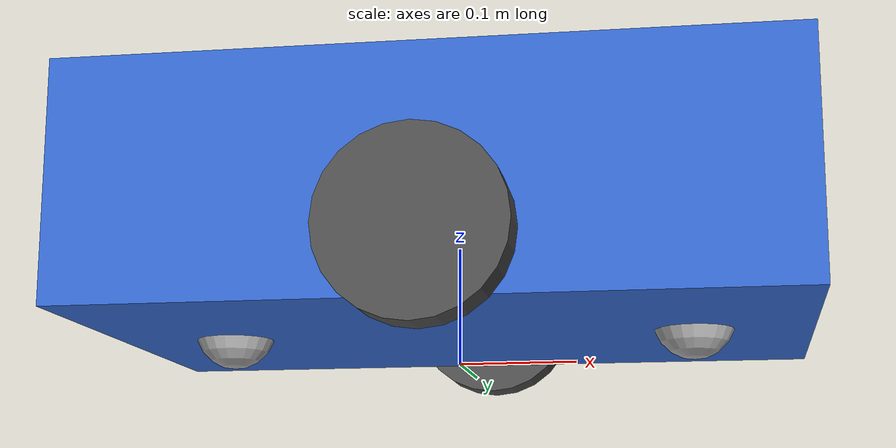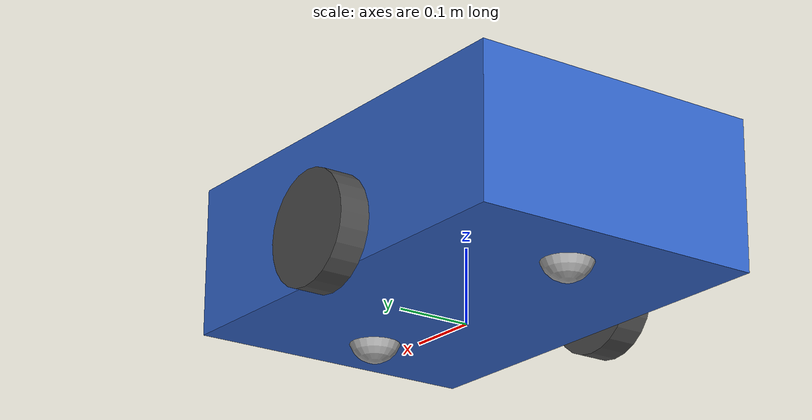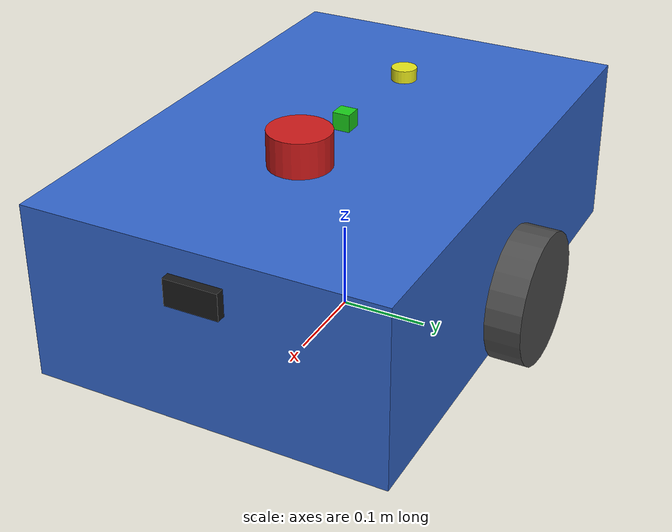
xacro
<?xml version="1.0"?>
<!--
  scout.urdf.xacro — Главный файл модели робота Scout Mini
  Подключает все компоненты: шасси, колёса, сенсоры, плагины Gazebo.
-->
<robot xmlns:xacro="http://www.ros.org/wiki/xacro" name="scout_mini">

  <!-- ПАРАМЕТРЫ РОБОТА                                              -->

  <!-- Шасси -->
  <xacro:property name="chassis_length" value="0.6"/>     <!-- Длина корпуса, м -->
  <xacro:property name="chassis_width" value="0.4"/>      <!-- Ширина корпуса, м -->
  <xacro:property name="chassis_height" value="0.2"/>     <!-- Высота корпуса, м -->
  <xacro:property name="chassis_mass" value="12.0"/>      <!-- Масса корпуса, кг -->
  <xacro:property name="chassis_z_offset" value="0.125"/> <!-- Высота центра корпуса над землёй, м -->

  <!-- Колёса (2 ведущих на центральной оси) -->
  <xacro:property name="wheel_radius" value="0.075"/>     <!-- Радиус колеса, м -->
  <xacro:property name="wheel_width" value="0.04"/>       <!-- Ширина колеса, м -->
  <xacro:property name="wheel_mass" value="0.5"/>         <!-- Масса одного колеса, кг -->
  <xacro:property name="wheel_separation" value="0.44"/>  <!-- Колея: между центрами колёс, м -->

  <!-- Сферические опорные катки (трение ~0) -->
  <xacro:property name="caster_radius" value="0.035"/>    <!-- Радиус сферы-катка, м -->
  <xacro:property name="caster_x_offset" value="0.2"/>    <!-- Вынос катков вперёд/назад, м -->
  <xacro:property name="caster_mass" value="0.1"/>        <!-- Масса катка, кг -->

  <!-- Шасси и колёса -->
  <xacro:include filename="$(find scout_description)/urdf/base.xacro"/>

  <!-- Сенсоры (ВСЕ ВКЛЮЧЕНЫ) -->
  <xacro:include filename="$(find scout_description)/urdf/sensors/lidar.xacro"/>
  <xacro:include filename="$(find scout_description)/urdf/sensors/depth_camera.xacro"/>
  <xacro:include filename="$(find scout_description)/urdf/sensors/imu.xacro"/>
  <xacro:include filename="$(find scout_description)/urdf/sensors/gps.xacro"/>

  <!-- Плагины Gazebo -->
  <xacro:include filename="$(find scout_description)/urdf/gazebo/gz_plugins.xacro"/>

</robot>

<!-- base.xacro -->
<robot xmlns:xacro="http://www.ros.org/wiki/xacro">

  <!-- МАКРОС: ведущее колесо                                        -->
  <xacro:macro name="drive_wheel" params="prefix y_offset">
    <joint name="${prefix}_wheel_joint" type="continuous">
      <parent link="base_link"/>
      <child link="${prefix}_wheel"/>
      <!-- центр колеса на высоте wheel_radius над землёй -->
      <origin xyz="0 ${y_offset} ${wheel_radius - chassis_z_offset}" rpy="0 0 0"/>
      <axis xyz="0 1 0"/>
      <dynamics damping="0.1" friction="0.1"/>
    </joint>

    <link name="${prefix}_wheel">
      <visual>
        <origin xyz="0 0 0" rpy="${pi/2} 0 0"/>
        <geometry>
          <cylinder radius="${wheel_radius}" length="${wheel_width}"/>
        </geometry>
        <material name="dark_grey">
          <color rgba="0.3 0.3 0.3 1.0"/>
        </material>
      </visual>

      <collision>
        <origin xyz="0 0 0" rpy="${pi/2} 0 0"/>
        <geometry>
          <cylinder radius="${wheel_radius}" length="${wheel_width}"/>
        </geometry>
      </collision>

      <inertial>
        <mass value="${wheel_mass}"/>
        <origin xyz="0 0 0" rpy="${pi/2} 0 0"/>
        <inertia
          ixx="${wheel_mass * (3 * wheel_radius * wheel_radius + wheel_width * wheel_width) / 12}"
          ixy="0" ixz="0"
          iyy="${wheel_mass * (3 * wheel_radius * wheel_radius + wheel_width * wheel_width) / 12}"
          iyz="0"
          izz="${wheel_mass * wheel_radius * wheel_radius / 2}"/>
      </inertial>
    </link>

    <gazebo reference="${prefix}_wheel">
      <mu1>1.0</mu1>
      <mu2>1.0</mu2>
      <kp>1000000.0</kp>
      <kd>100.0</kd>
      <material>Gazebo/DarkGrey</material>
    </gazebo>
  </xacro:macro>

  <!-- МАКРОС: сферический опорный каток (трение ~0)                 -->
  <xacro:macro name="caster_ball" params="prefix x_offset">
    <link name="${prefix}_caster">
      <visual>
        <geometry>
          <sphere radius="${caster_radius}"/>
        </geometry>
        <material name="light_grey">
          <color rgba="0.7 0.7 0.7 1.0"/>
        </material>
      </visual>

      <collision>
        <geometry>
          <sphere radius="${caster_radius}"/>
        </geometry>
      </collision>

      <inertial>
        <mass value="${caster_mass}"/>
        <inertia
          ixx="${2 * caster_mass * caster_radius * caster_radius / 5}"
          ixy="0" ixz="0"
          iyy="${2 * caster_mass * caster_radius * caster_radius / 5}"
          iyz="0"
          izz="${2 * caster_mass * caster_radius * caster_radius / 5}"/>
      </inertial>
    </link>

    <!-- fixed-сустав: сфера не вращается — она СКОЛЬЗИТ с нулевым
         трением, работая как омнисферический каток -->
    <joint name="${prefix}_caster_joint" type="fixed">
      <parent link="base_link"/>
      <child link="${prefix}_caster"/>
      <origin xyz="${x_offset} 0 ${caster_radius - chassis_z_offset}" rpy="0 0 0"/>
    </joint>

    <gazebo reference="${prefix}_caster">
      <mu1>0.0</mu1>
      <mu2>0.0</mu2>
      <kp>1000000.0</kp>
      <kd>100.0</kd>
      <material>Gazebo/Grey</material>
    </gazebo>
  </xacro:macro>

  <!-- BASE_FOOTPRINT — проекция робота на землю                     -->
  <link name="base_footprint"/>

  <joint name="base_joint" type="fixed">
    <parent link="base_footprint"/>
    <child link="base_link"/>
    <origin xyz="0 0 ${chassis_z_offset}" rpy="0 0 0"/>
  </joint>

  <!-- BASE_LINK — корпус                                            -->
  <link name="base_link">
    <visual>
      <geometry>
        <box size="${chassis_length} ${chassis_width} ${chassis_height}"/>
      </geometry>
      <material name="blue">
        <color rgba="0.2 0.4 0.8 1.0"/>
      </material>
    </visual>

    <collision>
      <geometry>
        <box size="${chassis_length} ${chassis_width} ${chassis_height}"/>
      </geometry>
    </collision>

    <inertial>
      <mass value="${chassis_mass}"/>
      <inertia
        ixx="${chassis_mass * (chassis_height * chassis_height + chassis_width * chassis_width) / 12}"
        ixy="0" ixz="0"
        iyy="${chassis_mass * (chassis_length * chassis_length + chassis_height * chassis_height) / 12}"
        iyz="0"
        izz="${chassis_mass * (chassis_length * chassis_length + chassis_width * chassis_width) / 12}"/>
    </inertial>
  </link>

  <gazebo reference="base_link">
    <material>Gazebo/Blue</material>
  </gazebo>

  <!-- СБОРКА: 2 ведущих колеса на центральной оси + 2 катка         -->
  <xacro:drive_wheel prefix="left"  y_offset="${wheel_separation / 2}"/>
  <xacro:drive_wheel prefix="right" y_offset="${-wheel_separation / 2}"/>

  <xacro:caster_ball prefix="front" x_offset="${caster_x_offset}"/>
  <xacro:caster_ball prefix="rear"  x_offset="${-caster_x_offset}"/>

</robot>

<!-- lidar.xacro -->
<!--
  lidar.xacro — 2D LiDAR (аналог RPLiDAR A2 / Hokuyo UST-10LX)

  Расположение: верхняя часть корпуса, по центру.
  Сканирует на 360° в горизонтальной плоскости.
-->
<robot xmlns:xacro="http://www.ros.org/wiki/xacro">

  <!-- Параметры LiDAR -->
  <xacro:property name="lidar_radius" value="0.035"/>   <!-- Радиус корпуса LiDAR, м -->
  <xacro:property name="lidar_height" value="0.04"/>    <!-- Высота корпуса LiDAR, м -->
  <xacro:property name="lidar_mass" value="0.2"/>       <!-- Масса LiDAR, кг -->
  <xacro:property name="lidar_z_offset" value="0.02"/>  <!-- Смещение вверх от крыши = половина высоты корпуса LiDAR (стоит заподлицо, плоскость скана в центре цилиндра) -->

  <!-- СОЧЛЕНЕНИЕ: крепление LiDAR к корпусу                         -->
  <joint name="lidar_joint" type="fixed">
    <parent link="base_link"/>
    <child link="lidar_link"/>
    <!-- LiDAR на крыше корпуса, по центру, чуть впереди -->
    <origin xyz="0.1 0 ${chassis_height / 2 + lidar_z_offset}" rpy="0 0 0"/>
  </joint>

  <!-- ЗВЕНО: корпус LiDAR                                           -->
  <link name="lidar_link">
    <visual>
      <geometry>
        <!-- LiDAR — маленький цилиндр на крыше -->
        <cylinder radius="${lidar_radius}" length="${lidar_height}"/>
      </geometry>
      <material name="red">
        <color rgba="0.8 0.1 0.1 1.0"/>
      </material>
    </visual>

    <collision>
      <geometry>
        <cylinder radius="${lidar_radius}" length="${lidar_height}"/>
      </geometry>
    </collision>

    <inertial>
      <mass value="${lidar_mass}"/>
      <inertia
        ixx="${lidar_mass * (3 * lidar_radius * lidar_radius + lidar_height * lidar_height) / 12}"
        ixy="0" ixz="0"
        iyy="${lidar_mass * (3 * lidar_radius * lidar_radius + lidar_height * lidar_height) / 12}"
        iyz="0"
        izz="${lidar_mass * lidar_radius * lidar_radius / 2}"/>
    </inertial>
  </link>

  <!-- ПЛАГИН GAZEBO: GPU LiDAR                                      -->
  <!-- Использует GPU для быстрого ray-casting (трассировки лучей).  -->
  <!-- Рендерится движком Sensors-системы мира (ogre2, см. obstacle_course.sdf) -->
  <gazebo reference="lidar_link">
    <sensor name="gpu_lidar" type="gpu_lidar">
      <!-- Частота сканирования -->
      <update_rate>10</update_rate>

      <!-- Визуализация лучей в Gazebo (можно отключить для скорости) -->
      <visualize>true</visualize>

      <!-- Frame_id сообщений LiDAR без префикса имени модели (Harmonic) -->
      <gz_frame_id>lidar_link</gz_frame_id>

      <!-- Тема GZ Transport (маппится на /scan в ROS 2) -->
      <topic>scan</topic>

      <!-- Параметры сканирования -->
      <lidar>
        <scan>
          <horizontal>
            <samples>720</samples>
            <!-- 720 лучей = 0.5° разрешение на 360° -->
            <resolution>1</resolution>
            <min_angle>-3.14159265</min_angle>
            <max_angle>3.14159265</max_angle>
            <!-- +π = +180° (итого 360°) -->
          </horizontal>
        </scan>

        <range>
          <min>0.12</min>
          <!-- Минимальная дальность 12 см (ближе — слепая зона) -->
          <max>12.0</max>
          <!-- Максимальная дальность 12 м -->
          <resolution>0.01</resolution>
          <!-- Точность измерения 1 см -->
        </range>

        <!-- Шум измерения (моделирует реальный LiDAR) -->
        <noise>
          <type>gaussian</type>
          <mean>0.0</mean>
          <stddev>0.01</stddev>
          <!-- Стандартное отклонение 1 см -->
        </noise>
      </lidar>
    </sensor>

    <!-- Цвет LiDAR в Gazebo -->
    <material>Gazebo/Red</material>
  </gazebo>

</robot>

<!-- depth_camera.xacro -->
<robot xmlns:xacro="http://www.ros.org/wiki/xacro">

  <!-- Параметры камеры -->
  <xacro:property name="camera_width" value="0.06"/>    <!-- Ширина камеры, м -->
  <xacro:property name="camera_height" value="0.03"/>   <!-- Высота камеры, м -->
  <xacro:property name="camera_depth" value="0.02"/>    <!-- Глубина камеры, м -->
  <xacro:property name="camera_mass" value="0.15"/>     <!-- Масса камеры, кг -->

  <!-- СОЧЛЕНЕНИЕ: крепление камеры к корпусу                        -->
  <joint name="camera_joint" type="fixed">
    <parent link="base_link"/>
    <child link="camera_link"/>
    <!-- Камера на передней панели, по центру, на высоте 18 см от земли -->
    <origin xyz="${chassis_length / 2} 0 0.055" rpy="0 0 0"/>
  </joint>

  <!-- ЗВЕНО: корпус камеры                                          -->
  <link name="camera_link">
    <visual>
      <geometry>
        <box size="${camera_depth} ${camera_width} ${camera_height}"/>
      </geometry>
      <material name="black">
        <color rgba="0.1 0.1 0.1 1.0"/>
      </material>
    </visual>

    <collision>
      <geometry>
        <box size="${camera_depth} ${camera_width} ${camera_height}"/>
      </geometry>
    </collision>

    <inertial>
      <mass value="${camera_mass}"/>
      <inertia
        ixx="${camera_mass * (camera_height * camera_height + camera_depth * camera_depth) / 12}"
        ixy="0" ixz="0"
        iyy="${camera_mass * (camera_width * camera_width + camera_depth * camera_depth) / 12}"
        iyz="0"
        izz="${camera_mass * (camera_width * camera_width + camera_height * camera_height) / 12}"/>
    </inertial>
  </link>

  <!-- ОПТИЧЕСКИЙ ФРЕЙМ КАМЕРЫ                                       -->
  <!-- В ROS принято, что оптическая ось камеры направлена по Z,     -->
  <!-- X — вправо, Y — вниз. Это отличается от стандартного ROS       -->
  <!-- (X-вперёд, Y-влево, Z-вверх). Нужен отдельный фрейм.           -->
  <joint name="camera_optical_joint" type="fixed">
    <parent link="camera_link"/>
    <child link="camera_depth_optical_link"/>
    <!-- Поворот из ROS-фрейма в оптический фрейм камеры -->
    <origin xyz="0 0 0" rpy="${-pi/2} 0 ${-pi/2}"/>
  </joint>

  <link name="camera_depth_optical_link"/>

  <!-- ПЛАГИН GAZEBO: RGB-D камера                                   -->
  <!-- Генерирует RGB-изображение + карту глубины + облако точек.    -->
  <gazebo reference="camera_link">
    <sensor name="rgbd_camera" type="rgbd_camera">
      <update_rate>10</update_rate>
      <!-- 10 Гц (снижено с 15 для CPU/RTF, раздел 3) -->

      <gz_frame_id>camera_link</gz_frame_id>

      <visualize>true</visualize>

      <!-- Тема GZ Transport -->
      <topic>depth_camera</topic>

      <camera>
        <!-- Горизонтальное поле зрения -->
        <horizontal_fov>1.047</horizontal_fov>
        <!-- 60° = 1.047 рад -->

        <image>
          <width>320</width>
          <height>240</height>
          <format>R8G8B8</format>
        </image>

        <!-- Параметры «объектива» -->
        <clip>
          <near>0.4</near>
          <!-- Минимальная дистанция 40 см (ближе — не видит, как реальная Astra) -->
          <far>8.0</far>
          <!-- Максимальная дистанция 8 м -->
        </clip>

        <!-- Шум глубины -->
        <noise>
          <type>gaussian</type>
          <mean>0.0</mean>
          <stddev>0.005</stddev>
          <!-- Шум глубины 5 мм — реалистично для Astra на расстоянии 1-2 м -->
        </noise>
      </camera>
    </sensor>

    <material>Gazebo/Black</material>
  </gazebo>

</robot>

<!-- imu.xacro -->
<!--
  imu.xacro — IMU (аналог BNO055 / MPU-9250)

  Расположение: центр корпуса (для минимизации ошибок от вибраций).
  Измеряет: угловая скорость, линейное ускорение, ориентация.
-->
<robot xmlns:xacro="http://www.ros.org/wiki/xacro">

  <!-- Параметры IMU -->
  <xacro:property name="imu_size" value="0.02"/>    <!-- Размер кубика IMU, м (2 см) -->
  <xacro:property name="imu_mass" value="0.01"/>    <!-- Масса IMU, кг (10 г) -->

  <!-- СОЧЛЕНЕНИЕ: крепление IMU к корпусу                           -->
  <joint name="imu_joint" type="fixed">
    <parent link="base_link"/>
    <child link="imu_link"/>
    <!-- IMU в центре корпуса, на верхней грани -->
    <origin xyz="0 0 ${chassis_height / 2 + 0.01}" rpy="0 0 0"/>
  </joint>

  <!-- ЗВЕНО: корпус IMU                                             -->
  <link name="imu_link">
    <visual>
      <geometry>
        <box size="${imu_size} ${imu_size} ${imu_size}"/>
      </geometry>
      <material name="green">
        <color rgba="0.1 0.8 0.1 1.0"/>
      </material>
    </visual>

    <collision>
      <geometry>
        <box size="${imu_size} ${imu_size} ${imu_size}"/>
      </geometry>
    </collision>

    <inertial>
      <mass value="${imu_mass}"/>
      <inertia
        ixx="${imu_mass * imu_size * imu_size / 6}"
        ixy="0" ixz="0"
        iyy="${imu_mass * imu_size * imu_size / 6}"
        iyz="0"
        izz="${imu_mass * imu_size * imu_size / 6}"/>
    </inertial>
  </link>

  <!-- ПЛАГИН GAZEBO: IMU                                            -->
  <!-- Публикует данные инерциального датчика.                        -->
  <gazebo reference="imu_link">
    <sensor name="imu_sensor" type="imu">
      <update_rate>100</update_rate>
      <!-- 100 Гц — стандарт для IMU. Выше, чем LiDAR и камера,
           потому что IMU должен отслеживать быстрые движения -->

      <!-- Frame_id сообщений IMU без префикса имени модели -->
      <gz_frame_id>imu_link</gz_frame_id>

      <visualize>false</visualize>
      <!-- IMU нечего визуализировать — нет лучей или изображений -->

      <topic>imu</topic>

      <imu>
        <!-- Шум гироскопа (угловая скорость) -->
        <angular_velocity>
          <x>
            <noise type="gaussian">
              <mean>0.0</mean>
              <stddev>0.001</stddev>
              <!-- 0.001 рад/с ≈ 0.057°/с — хороший гироскоп -->
              <bias_mean>0.0001</bias_mean>
              <!-- Систематическая ошибка (дрейф) -->
              <bias_stddev>0.00001</bias_stddev>
            </noise>
          </x>
          <y>
            <noise type="gaussian">
              <mean>0.0</mean>
              <stddev>0.001</stddev>
              <bias_mean>0.0001</bias_mean>
              <bias_stddev>0.00001</bias_stddev>
            </noise>
          </y>
          <z>
            <noise type="gaussian">
              <mean>0.0</mean>
              <stddev>0.001</stddev>
              <bias_mean>0.0001</bias_mean>
              <bias_stddev>0.00001</bias_stddev>
            </noise>
          </z>
        </angular_velocity>

        <!-- Шум акселерометра (линейное ускорение) -->
        <linear_acceleration>
          <x>
            <noise type="gaussian">
              <mean>0.0</mean>
              <stddev>0.01</stddev>
              <!-- 0.01 м/с² ≈ 0.001g — хороший акселерометр -->
              <bias_mean>0.001</bias_mean>
              <bias_stddev>0.0001</bias_stddev>
            </noise>
          </x>
          <y>
            <noise type="gaussian">
              <mean>0.0</mean>
              <stddev>0.01</stddev>
              <bias_mean>0.001</bias_mean>
              <bias_stddev>0.0001</bias_stddev>
            </noise>
          </y>
          <z>
            <noise type="gaussian">
              <mean>0.0</mean>
              <stddev>0.01</stddev>
              <bias_mean>0.001</bias_mean>
              <bias_stddev>0.0001</bias_stddev>
            </noise>
          </z>
        </linear_acceleration>
      </imu>
    </sensor>

    <material>Gazebo/Green</material>
  </gazebo>

</robot>

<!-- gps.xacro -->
<!--
  gps.xacro — GPS-приёмник (аналог u-blox NEO-M8N)

  Расположение: верхняя точка робота (для лучшего «приёма спутников»).
  Публикует: широту, долготу, высоту (sensor_msgs/NavSatFix).
-->
<robot xmlns:xacro="http://www.ros.org/wiki/xacro">

  <!-- Параметры GPS -->
  <xacro:property name="gps_radius" value="0.015"/>  <!-- Радиус антенны, м -->
  <xacro:property name="gps_height" value="0.02"/>   <!-- Высота антенны, м -->
  <xacro:property name="gps_mass" value="0.03"/>     <!-- Масса, кг -->

  <!-- СОЧЛЕНЕНИЕ: крепление GPS к корпусу                           -->
  <joint name="gps_joint" type="fixed">
    <parent link="base_link"/>
    <child link="gps_link"/>

    <!-- GPS-антенна на крыше, чуть сзади. Опущена на 5 мм ниже плоскости
         скана LiDAR (0.245 м), чтобы лидар не цепывал её вершину -->
    <origin xyz="-0.15 0 ${chassis_height / 2 + 0.005}" rpy="0 0 0"/>

  </joint>

  <!-- ЗВЕНО: GPS-антенна                                            -->
  <link name="gps_link">
    <visual>
      <geometry>
        <cylinder radius="${gps_radius}" length="${gps_height}"/>
      </geometry>
      <material name="yellow">
        <color rgba="0.9 0.9 0.1 1.0"/>
      </material>
    </visual>

    <collision>
      <geometry>
        <cylinder radius="${gps_radius}" length="${gps_height}"/>
      </geometry>
    </collision>

    <inertial>
      <mass value="${gps_mass}"/>
      <inertia
        ixx="${gps_mass * (3 * gps_radius * gps_radius + gps_height * gps_height) / 12}"
        ixy="0" ixz="0"
        iyy="${gps_mass * (3 * gps_radius * gps_radius + gps_height * gps_height) / 12}"
        iyz="0"
        izz="${gps_mass * gps_radius * gps_radius / 2}"/>
    </inertial>
  </link>

  <!-- ПЛАГИН GAZEBO: NavSat (GPS)                                   -->
  <!-- Конвертирует позицию робота в GPS-координаты.                  -->
  <!-- Точность привязки зависит от spherical_coordinates в SDF-мире. -->
  <!-- (датум — spherical_coordinates мира obstacle_course.sdf, -->
  <!--   Москва; без неё координаты были бы ~0°) -->
  <gazebo reference="gps_link">
    <sensor name="navsat_sensor" type="navsat">
      <update_rate>5</update_rate>
      <!-- 5 Гц — стандарт для u-blox NEO-M8N -->

      <!-- Frame_id сообщений GPS без префикса имени модели -->
      <gz_frame_id>gps_link</gz_frame_id>

      <visualize>false</visualize>

      <topic>navsat</topic>

      <navsat>
        <!-- Шум GPS-позиции -->
        <position_sensing>
          <horizontal>
            <noise type="gaussian">
              <mean>0.0</mean>
              <stddev>9.0e-6</stddev>
            </noise>
          </horizontal>
          <vertical>
            <noise type="gaussian">
              <mean>0.0</mean>
              <stddev>2.0</stddev>
              <!-- Вертикальная точность ±2 м (GPS всегда хуже по высоте) -->
            </noise>
          </vertical>
        </position_sensing>
      </navsat>
    </sensor>

    <material>Gazebo/Yellow</material>
  </gazebo>

</robot>
